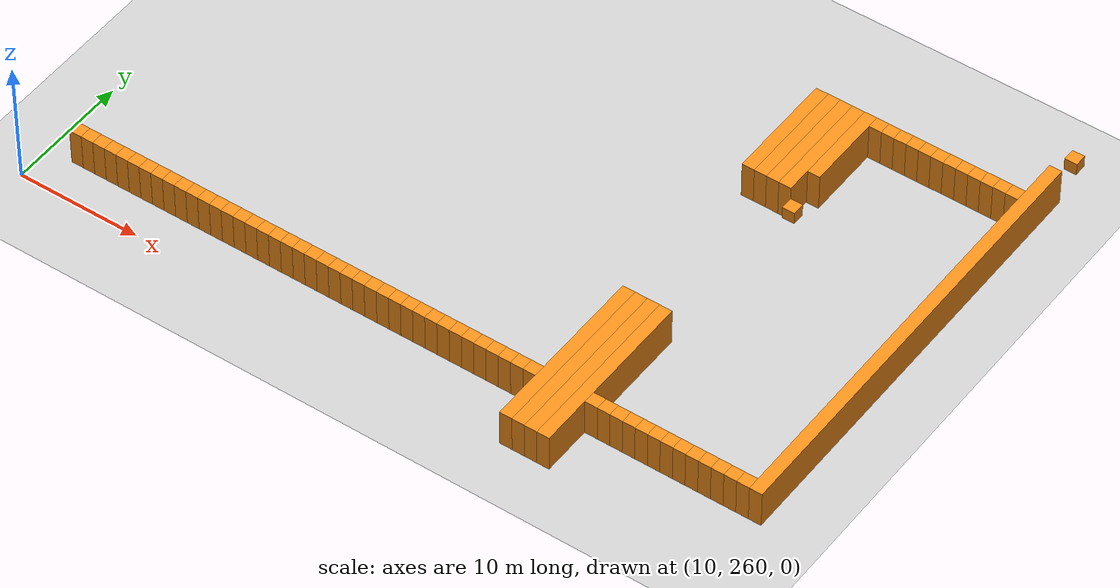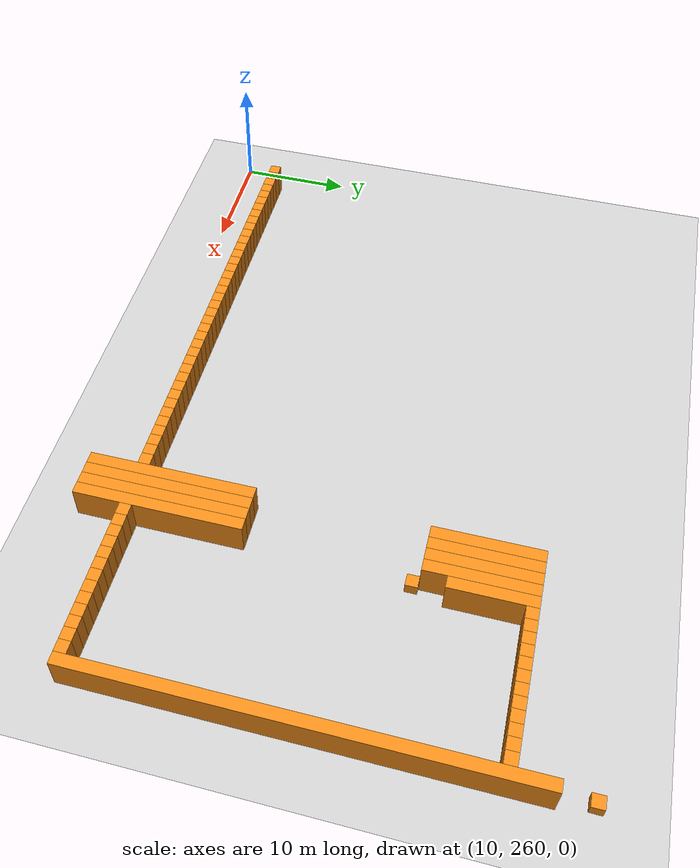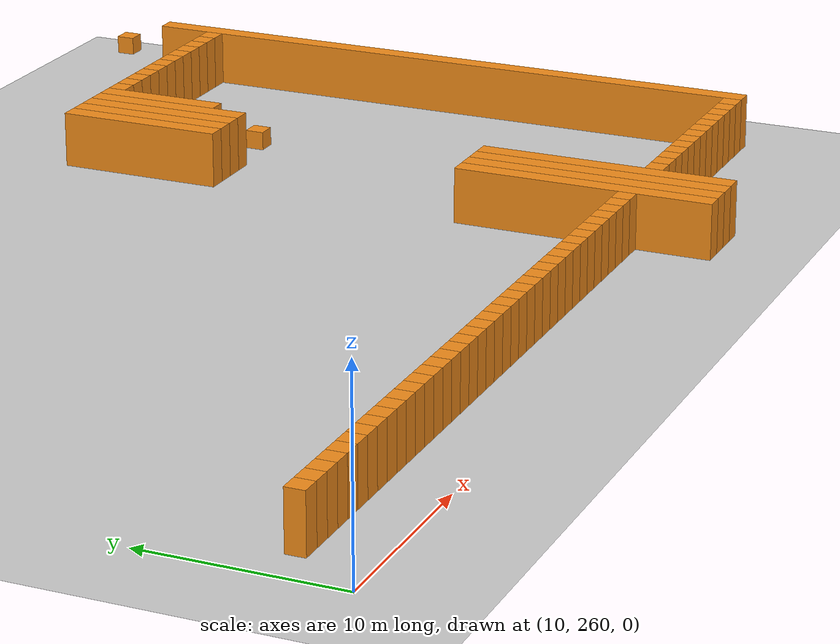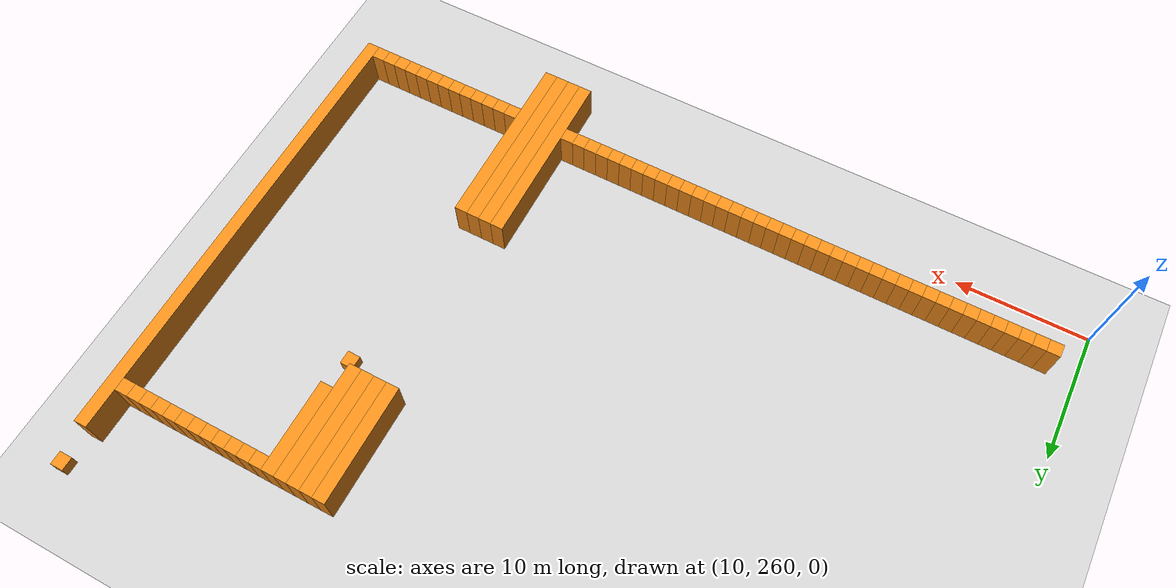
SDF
<sdf version="1.6">
 <world name="default">
  <include><uri>model://ground_plane</uri></include>
  <model name="unit_box_080">
   <pose>12.50   263.50     1.50 0 0 0</pose>
   <static>1</static>
   <link name="link">
    <inertial>
     <mass>5000</mass>
     <inertia><ixx>200</ixx><ixy>0</ixy><ixz>0</ixz><iyy>200</iyy><iyz>0</iyz><izz>200</izz></inertia>
    </inertial>
    <collision name="collision"><geometry><box><size>1 1 3</size></box></geometry></collision>
    <visual name="visual">
     <geometry><box><size>1 1 3</size></box></geometry>
     <material>
      <script><name>Gazebo/Orange</name><uri>file://media/materials/scripts/gazebo.material</uri></script>
     </material>
    </visual>
   </link>
  </model>
  <model name="unit_box_093">
   <pose>13.50   263.50     1.50 0 0 0</pose>
   <static>1</static>
   <link name="link">
    <inertial>
     <mass>5000</mass>
     <inertia><ixx>200</ixx><ixy>0</ixy><ixz>0</ixz><iyy>200</iyy><iyz>0</iyz><izz>200</izz></inertia>
    </inertial>
    <collision name="collision"><geometry><box><size>1 1 3</size></box></geometry></collision>
    <visual name="visual">
     <geometry><box><size>1 1 3</size></box></geometry>
     <material>
      <script><name>Gazebo/Orange</name><uri>file://media/materials/scripts/gazebo.material</uri></script>
     </material>
    </visual>
   </link>
  </model>
  <model name="unit_box_106">
   <pose>14.50   263.50     1.50 0 0 0</pose>
   <static>1</static>
   <link name="link">
    <inertial>
     <mass>5000</mass>
     <inertia><ixx>200</ixx><ixy>0</ixy><ixz>0</ixz><iyy>200</iyy><iyz>0</iyz><izz>200</izz></inertia>
    </inertial>
    <collision name="collision"><geometry><box><size>1 1 3</size></box></geometry></collision>
    <visual name="visual">
     <geometry><box><size>1 1 3</size></box></geometry>
     <material>
      <script><name>Gazebo/Orange</name><uri>file://media/materials/scripts/gazebo.material</uri></script>
     </material>
    </visual>
   </link>
  </model>
  <model name="unit_box_119">
   <pose>15.50   263.50     1.50 0 0 0</pose>
   <static>1</static>
   <link name="link">
    <inertial>
     <mass>5000</mass>
     <inertia><ixx>200</ixx><ixy>0</ixy><ixz>0</ixz><iyy>200</iyy><iyz>0</iyz><izz>200</izz></inertia>
    </inertial>
    <collision name="collision"><geometry><box><size>1 1 3</size></box></geometry></collision>
    <visual name="visual">
     <geometry><box><size>1 1 3</size></box></geometry>
     <material>
      <script><name>Gazebo/Orange</name><uri>file://media/materials/scripts/gazebo.material</uri></script>
     </material>
    </visual>
   </link>
  </model>
  <model name="unit_box_132">
   <pose>16.50   263.50     1.50 0 0 0</pose>
   <static>1</static>
   <link name="link">
    <inertial>
     <mass>5000</mass>
     <inertia><ixx>200</ixx><ixy>0</ixy><ixz>0</ixz><iyy>200</iyy><iyz>0</iyz><izz>200</izz></inertia>
    </inertial>
    <collision name="collision"><geometry><box><size>1 1 3</size></box></geometry></collision>
    <visual name="visual">
     <geometry><box><size>1 1 3</size></box></geometry>
     <material>
      <script><name>Gazebo/Orange</name><uri>file://media/materials/scripts/gazebo.material</uri></script>
     </material>
    </visual>
   </link>
  </model>
  <model name="unit_box_145">
   <pose>17.50   263.50     1.50 0 0 0</pose>
   <static>1</static>
   <link name="link">
    <inertial>
     <mass>5000</mass>
     <inertia><ixx>200</ixx><ixy>0</ixy><ixz>0</ixz><iyy>200</iyy><iyz>0</iyz><izz>200</izz></inertia>
    </inertial>
    <collision name="collision"><geometry><box><size>1 1 3</size></box></geometry></collision>
    <visual name="visual">
     <geometry><box><size>1 1 3</size></box></geometry>
     <material>
      <script><name>Gazebo/Orange</name><uri>file://media/materials/scripts/gazebo.material</uri></script>
     </material>
    </visual>
   </link>
  </model>
  <model name="unit_box_158">
   <pose>18.50   263.50     1.50 0 0 0</pose>
   <static>1</static>
   <link name="link">
    <inertial>
     <mass>5000</mass>
     <inertia><ixx>200</ixx><ixy>0</ixy><ixz>0</ixz><iyy>200</iyy><iyz>0</iyz><izz>200</izz></inertia>
    </inertial>
    <collision name="collision"><geometry><box><size>1 1 3</size></box></geometry></collision>
    <visual name="visual">
     <geometry><box><size>1 1 3</size></box></geometry>
     <material>
      <script><name>Gazebo/Orange</name><uri>file://media/materials/scripts/gazebo.material</uri></script>
     </material>
    </visual>
   </link>
  </model>
  <model name="unit_box_171">
   <pose>19.50   263.50     1.50 0 0 0</pose>
   <static>1</static>
   <link name="link">
    <inertial>
     <mass>5000</mass>
     <inertia><ixx>200</ixx><ixy>0</ixy><ixz>0</ixz><iyy>200</iyy><iyz>0</iyz><izz>200</izz></inertia>
    </inertial>
    <collision name="collision"><geometry><box><size>1 1 3</size></box></geometry></collision>
    <visual name="visual">
     <geometry><box><size>1 1 3</size></box></geometry>
     <material>
      <script><name>Gazebo/Orange</name><uri>file://media/materials/scripts/gazebo.material</uri></script>
     </material>
    </visual>
   </link>
  </model>
  <model name="unit_box_184">
   <pose>20.50   263.50     1.50 0 0 0</pose>
   <static>1</static>
   <link name="link">
    <inertial>
     <mass>5000</mass>
     <inertia><ixx>200</ixx><ixy>0</ixy><ixz>0</ixz><iyy>200</iyy><iyz>0</iyz><izz>200</izz></inertia>
    </inertial>
    <collision name="collision"><geometry><box><size>1 1 3</size></box></geometry></collision>
    <visual name="visual">
     <geometry><box><size>1 1 3</size></box></geometry>
     <material>
      <script><name>Gazebo/Orange</name><uri>file://media/materials/scripts/gazebo.material</uri></script>
     </material>
    </visual>
   </link>
  </model>
  <model name="unit_box_197">
   <pose>21.50   263.50     1.50 0 0 0</pose>
   <static>1</static>
   <link name="link">
    <inertial>
     <mass>5000</mass>
     <inertia><ixx>200</ixx><ixy>0</ixy><ixz>0</ixz><iyy>200</iyy><iyz>0</iyz><izz>200</izz></inertia>
    </inertial>
    <collision name="collision"><geometry><box><size>1 1 3</size></box></geometry></collision>
    <visual name="visual">
     <geometry><box><size>1 1 3</size></box></geometry>
     <material>
      <script><name>Gazebo/Orange</name><uri>file://media/materials/scripts/gazebo.material</uri></script>
     </material>
    </visual>
   </link>
  </model>
  <model name="unit_box_210">
   <pose>22.50   263.50     1.50 0 0 0</pose>
   <static>1</static>
   <link name="link">
    <inertial>
     <mass>5000</mass>
     <inertia><ixx>200</ixx><ixy>0</ixy><ixz>0</ixz><iyy>200</iyy><iyz>0</iyz><izz>200</izz></inertia>
    </inertial>
    <collision name="collision"><geometry><box><size>1 1 3</size></box></geometry></collision>
    <visual name="visual">
     <geometry><box><size>1 1 3</size></box></geometry>
     <material>
      <script><name>Gazebo/Orange</name><uri>file://media/materials/scripts/gazebo.material</uri></script>
     </material>
    </visual>
   </link>
  </model>
  <model name="unit_box_223">
   <pose>23.50   263.50     1.50 0 0 0</pose>
   <static>1</static>
   <link name="link">
    <inertial>
     <mass>5000</mass>
     <inertia><ixx>200</ixx><ixy>0</ixy><ixz>0</ixz><iyy>200</iyy><iyz>0</iyz><izz>200</izz></inertia>
    </inertial>
    <collision name="collision"><geometry><box><size>1 1 3</size></box></geometry></collision>
    <visual name="visual">
     <geometry><box><size>1 1 3</size></box></geometry>
     <material>
      <script><name>Gazebo/Orange</name><uri>file://media/materials/scripts/gazebo.material</uri></script>
     </material>
    </visual>
   </link>
  </model>
  <model name="unit_box_236">
   <pose>24.50   263.50     1.50 0 0 0</pose>
   <static>1</static>
   <link name="link">
    <inertial>
     <mass>5000</mass>
     <inertia><ixx>200</ixx><ixy>0</ixy><ixz>0</ixz><iyy>200</iyy><iyz>0</iyz><izz>200</izz></inertia>
    </inertial>
    <collision name="collision"><geometry><box><size>1 1 3</size></box></geometry></collision>
    <visual name="visual">
     <geometry><box><size>1 1 3</size></box></geometry>
     <material>
      <script><name>Gazebo/Orange</name><uri>file://media/materials/scripts/gazebo.material</uri></script>
     </material>
    </visual>
   </link>
  </model>
  <model name="unit_box_249">
   <pose>25.50   263.50     1.50 0 0 0</pose>
   <static>1</static>
   <link name="link">
    <inertial>
     <mass>5000</mass>
     <inertia><ixx>200</ixx><ixy>0</ixy><ixz>0</ixz><iyy>200</iyy><iyz>0</iyz><izz>200</izz></inertia>
    </inertial>
    <collision name="collision"><geometry><box><size>1 1 3</size></box></geometry></collision>
    <visual name="visual">
     <geometry><box><size>1 1 3</size></box></geometry>
     <material>
      <script><name>Gazebo/Orange</name><uri>file://media/materials/scripts/gazebo.material</uri></script>
     </material>
    </visual>
   </link>
  </model>
  <model name="unit_box_262">
   <pose>26.50   263.50     1.50 0 0 0</pose>
   <static>1</static>
   <link name="link">
    <inertial>
     <mass>5000</mass>
     <inertia><ixx>200</ixx><ixy>0</ixy><ixz>0</ixz><iyy>200</iyy><iyz>0</iyz><izz>200</izz></inertia>
    </inertial>
    <collision name="collision"><geometry><box><size>1 1 3</size></box></geometry></collision>
    <visual name="visual">
     <geometry><box><size>1 1 3</size></box></geometry>
     <material>
      <script><name>Gazebo/Orange</name><uri>file://media/materials/scripts/gazebo.material</uri></script>
     </material>
    </visual>
   </link>
  </model>
  <model name="unit_box_275">
   <pose>27.50   263.50     1.50 0 0 0</pose>
   <static>1</static>
   <link name="link">
    <inertial>
     <mass>5000</mass>
     <inertia><ixx>200</ixx><ixy>0</ixy><ixz>0</ixz><iyy>200</iyy><iyz>0</iyz><izz>200</izz></inertia>
    </inertial>
    <collision name="collision"><geometry><box><size>1 1 3</size></box></geometry></collision>
    <visual name="visual">
     <geometry><box><size>1 1 3</size></box></geometry>
     <material>
      <script><name>Gazebo/Orange</name><uri>file://media/materials/scripts/gazebo.material</uri></script>
     </material>
    </visual>
   </link>
  </model>
  <model name="unit_box_288">
   <pose>28.50   263.50     1.50 0 0 0</pose>
   <static>1</static>
   <link name="link">
    <inertial>
     <mass>5000</mass>
     <inertia><ixx>200</ixx><ixy>0</ixy><ixz>0</ixz><iyy>200</iyy><iyz>0</iyz><izz>200</izz></inertia>
    </inertial>
    <collision name="collision"><geometry><box><size>1 1 3</size></box></geometry></collision>
    <visual name="visual">
     <geometry><box><size>1 1 3</size></box></geometry>
     <material>
      <script><name>Gazebo/Orange</name><uri>file://media/materials/scripts/gazebo.material</uri></script>
     </material>
    </visual>
   </link>
  </model>
  <model name="unit_box_301">
   <pose>29.50   263.50     1.50 0 0 0</pose>
   <static>1</static>
   <link name="link">
    <inertial>
     <mass>5000</mass>
     <inertia><ixx>200</ixx><ixy>0</ixy><ixz>0</ixz><iyy>200</iyy><iyz>0</iyz><izz>200</izz></inertia>
    </inertial>
    <collision name="collision"><geometry><box><size>1 1 3</size></box></geometry></collision>
    <visual name="visual">
     <geometry><box><size>1 1 3</size></box></geometry>
     <material>
      <script><name>Gazebo/Orange</name><uri>file://media/materials/scripts/gazebo.material</uri></script>
     </material>
    </visual>
   </link>
  </model>
  <model name="unit_box_314">
   <pose>30.50   263.50     1.50 0 0 0</pose>
   <static>1</static>
   <link name="link">
    <inertial>
     <mass>5000</mass>
     <inertia><ixx>200</ixx><ixy>0</ixy><ixz>0</ixz><iyy>200</iyy><iyz>0</iyz><izz>200</izz></inertia>
    </inertial>
    <collision name="collision"><geometry><box><size>1 1 3</size></box></geometry></collision>
    <visual name="visual">
     <geometry><box><size>1 1 3</size></box></geometry>
     <material>
      <script><name>Gazebo/Orange</name><uri>file://media/materials/scripts/gazebo.material</uri></script>
     </material>
    </visual>
   </link>
  </model>
  <model name="unit_box_327">
   <pose>31.50   263.50     1.50 0 0 0</pose>
   <static>1</static>
   <link name="link">
    <inertial>
     <mass>5000</mass>
     <inertia><ixx>200</ixx><ixy>0</ixy><ixz>0</ixz><iyy>200</iyy><iyz>0</iyz><izz>200</izz></inertia>
    </inertial>
    <collision name="collision"><geometry><box><size>1 1 3</size></box></geometry></collision>
    <visual name="visual">
     <geometry><box><size>1 1 3</size></box></geometry>
     <material>
      <script><name>Gazebo/Orange</name><uri>file://media/materials/scripts/gazebo.material</uri></script>
     </material>
    </visual>
   </link>
  </model>
  <model name="unit_box_340">
   <pose>32.50   263.50     1.50 0 0 0</pose>
   <static>1</static>
   <link name="link">
    <inertial>
     <mass>5000</mass>
     <inertia><ixx>200</ixx><ixy>0</ixy><ixz>0</ixz><iyy>200</iyy><iyz>0</iyz><izz>200</izz></inertia>
    </inertial>
    <collision name="collision"><geometry><box><size>1 1 3</size></box></geometry></collision>
    <visual name="visual">
     <geometry><box><size>1 1 3</size></box></geometry>
     <material>
      <script><name>Gazebo/Orange</name><uri>file://media/materials/scripts/gazebo.material</uri></script>
     </material>
    </visual>
   </link>
  </model>
  <model name="unit_box_353">
   <pose>33.50   263.50     1.50 0 0 0</pose>
   <static>1</static>
   <link name="link">
    <inertial>
     <mass>5000</mass>
     <inertia><ixx>200</ixx><ixy>0</ixy><ixz>0</ixz><iyy>200</iyy><iyz>0</iyz><izz>200</izz></inertia>
    </inertial>
    <collision name="collision"><geometry><box><size>1 1 3</size></box></geometry></collision>
    <visual name="visual">
     <geometry><box><size>1 1 3</size></box></geometry>
     <material>
      <script><name>Gazebo/Orange</name><uri>file://media/materials/scripts/gazebo.material</uri></script>
     </material>
    </visual>
   </link>
  </model>
  <model name="unit_box_366">
   <pose>34.50   263.50     1.50 0 0 0</pose>
   <static>1</static>
   <link name="link">
    <inertial>
     <mass>5000</mass>
     <inertia><ixx>200</ixx><ixy>0</ixy><ixz>0</ixz><iyy>200</iyy><iyz>0</iyz><izz>200</izz></inertia>
    </inertial>
    <collision name="collision"><geometry><box><size>1 1 3</size></box></geometry></collision>
    <visual name="visual">
     <geometry><box><size>1 1 3</size></box></geometry>
     <material>
      <script><name>Gazebo/Orange</name><uri>file://media/materials/scripts/gazebo.material</uri></script>
     </material>
    </visual>
   </link>
  </model>
  <model name="unit_box_379">
   <pose>35.50   263.50     1.50 0 0 0</pose>
   <static>1</static>
   <link name="link">
    <inertial>
     <mass>5000</mass>
     <inertia><ixx>200</ixx><ixy>0</ixy><ixz>0</ixz><iyy>200</iyy><iyz>0</iyz><izz>200</izz></inertia>
    </inertial>
    <collision name="collision"><geometry><box><size>1 1 3</size></box></geometry></collision>
    <visual name="visual">
     <geometry><box><size>1 1 3</size></box></geometry>
     <material>
      <script><name>Gazebo/Orange</name><uri>file://media/materials/scripts/gazebo.material</uri></script>
     </material>
    </visual>
   </link>
  </model>
  <model name="unit_box_392">
   <pose>36.50   263.50     1.50 0 0 0</pose>
   <static>1</static>
   <link name="link">
    <inertial>
     <mass>5000</mass>
     <inertia><ixx>200</ixx><ixy>0</ixy><ixz>0</ixz><iyy>200</iyy><iyz>0</iyz><izz>200</izz></inertia>
    </inertial>
    <collision name="collision"><geometry><box><size>1 1 3</size></box></geometry></collision>
    <visual name="visual">
     <geometry><box><size>1 1 3</size></box></geometry>
     <material>
      <script><name>Gazebo/Orange</name><uri>file://media/materials/scripts/gazebo.material</uri></script>
     </material>
    </visual>
   </link>
  </model>
  <model name="unit_box_405">
   <pose>37.50   263.50     1.50 0 0 0</pose>
   <static>1</static>
   <link name="link">
    <inertial>
     <mass>5000</mass>
     <inertia><ixx>200</ixx><ixy>0</ixy><ixz>0</ixz><iyy>200</iyy><iyz>0</iyz><izz>200</izz></inertia>
    </inertial>
    <collision name="collision"><geometry><box><size>1 1 3</size></box></geometry></collision>
    <visual name="visual">
     <geometry><box><size>1 1 3</size></box></geometry>
     <material>
      <script><name>Gazebo/Orange</name><uri>file://media/materials/scripts/gazebo.material</uri></script>
     </material>
    </visual>
   </link>
  </model>
  <model name="unit_box_418">
   <pose>38.50   263.50     1.50 0 0 0</pose>
   <static>1</static>
   <link name="link">
    <inertial>
     <mass>5000</mass>
     <inertia><ixx>200</ixx><ixy>0</ixy><ixz>0</ixz><iyy>200</iyy><iyz>0</iyz><izz>200</izz></inertia>
    </inertial>
    <collision name="collision"><geometry><box><size>1 1 3</size></box></geometry></collision>
    <visual name="visual">
     <geometry><box><size>1 1 3</size></box></geometry>
     <material>
      <script><name>Gazebo/Orange</name><uri>file://media/materials/scripts/gazebo.material</uri></script>
     </material>
    </visual>
   </link>
  </model>
  <model name="unit_box_431">
   <pose>39.50   263.50     1.50 0 0 0</pose>
   <static>1</static>
   <link name="link">
    <inertial>
     <mass>5000</mass>
     <inertia><ixx>200</ixx><ixy>0</ixy><ixz>0</ixz><iyy>200</iyy><iyz>0</iyz><izz>200</izz></inertia>
    </inertial>
    <collision name="collision"><geometry><box><size>1 1 3</size></box></geometry></collision>
    <visual name="visual">
     <geometry><box><size>1 1 3</size></box></geometry>
     <material>
      <script><name>Gazebo/Orange</name><uri>file://media/materials/scripts/gazebo.material</uri></script>
     </material>
    </visual>
   </link>
  </model>
  <model name="unit_box_444">
   <pose>40.50   263.50     1.50 0 0 0</pose>
   <static>1</static>
   <link name="link">
    <inertial>
     <mass>5000</mass>
     <inertia><ixx>200</ixx><ixy>0</ixy><ixz>0</ixz><iyy>200</iyy><iyz>0</iyz><izz>200</izz></inertia>
    </inertial>
    <collision name="collision"><geometry><box><size>1 1 3</size></box></geometry></collision>
    <visual name="visual">
     <geometry><box><size>1 1 3</size></box></geometry>
     <material>
      <script><name>Gazebo/Orange</name><uri>file://media/materials/scripts/gazebo.material</uri></script>
     </material>
    </visual>
   </link>
  </model>
  <model name="unit_box_457">
   <pose>41.50   263.50     1.50 0 0 0</pose>
   <static>1</static>
   <link name="link">
    <inertial>
     <mass>5000</mass>
     <inertia><ixx>200</ixx><ixy>0</ixy><ixz>0</ixz><iyy>200</iyy><iyz>0</iyz><izz>200</izz></inertia>
    </inertial>
    <collision name="collision"><geometry><box><size>1 1 3</size></box></geometry></collision>
    <visual name="visual">
     <geometry><box><size>1 1 3</size></box></geometry>
     <material>
      <script><name>Gazebo/Orange</name><uri>file://media/materials/scripts/gazebo.material</uri></script>
     </material>
    </visual>
   </link>
  </model>
  <model name="unit_box_470">
   <pose>42.50   263.50     1.50 0 0 0</pose>
   <static>1</static>
   <link name="link">
    <inertial>
     <mass>5000</mass>
     <inertia><ixx>200</ixx><ixy>0</ixy><ixz>0</ixz><iyy>200</iyy><iyz>0</iyz><izz>200</izz></inertia>
    </inertial>
    <collision name="collision"><geometry><box><size>1 1 3</size></box></geometry></collision>
    <visual name="visual">
     <geometry><box><size>1 1 3</size></box></geometry>
     <material>
      <script><name>Gazebo/Orange</name><uri>file://media/materials/scripts/gazebo.material</uri></script>
     </material>
    </visual>
   </link>
  </model>
  <model name="unit_box_483">
   <pose>43.50   263.50     1.50 0 0 0</pose>
   <static>1</static>
   <link name="link">
    <inertial>
     <mass>5000</mass>
     <inertia><ixx>200</ixx><ixy>0</ixy><ixz>0</ixz><iyy>200</iyy><iyz>0</iyz><izz>200</izz></inertia>
    </inertial>
    <collision name="collision"><geometry><box><size>1 1 3</size></box></geometry></collision>
    <visual name="visual">
     <geometry><box><size>1 1 3</size></box></geometry>
     <material>
      <script><name>Gazebo/Orange</name><uri>file://media/materials/scripts/gazebo.material</uri></script>
     </material>
    </visual>
   </link>
  </model>
  <model name="unit_box_496">
   <pose>44.50   263.50     1.50 0 0 0</pose>
   <static>1</static>
   <link name="link">
    <inertial>
     <mass>5000</mass>
     <inertia><ixx>200</ixx><ixy>0</ixy><ixz>0</ixz><iyy>200</iyy><iyz>0</iyz><izz>200</izz></inertia>
    </inertial>
    <collision name="collision"><geometry><box><size>1 1 3</size></box></geometry></collision>
    <visual name="visual">
     <geometry><box><size>1 1 3</size></box></geometry>
     <material>
      <script><name>Gazebo/Orange</name><uri>file://media/materials/scripts/gazebo.material</uri></script>
     </material>
    </visual>
   </link>
  </model>
  <model name="unit_box_509">
   <pose>45.50   263.50     1.50 0 0 0</pose>
   <static>1</static>
   <link name="link">
    <inertial>
     <mass>5000</mass>
     <inertia><ixx>200</ixx><ixy>0</ixy><ixz>0</ixz><iyy>200</iyy><iyz>0</iyz><izz>200</izz></inertia>
    </inertial>
    <collision name="collision"><geometry><box><size>1 1 3</size></box></geometry></collision>
    <visual name="visual">
     <geometry><box><size>1 1 3</size></box></geometry>
     <material>
      <script><name>Gazebo/Orange</name><uri>file://media/materials/scripts/gazebo.material</uri></script>
     </material>
    </visual>
   </link>
  </model>
  <model name="unit_box_522">
   <pose>46.50   263.50     1.50 0 0 0</pose>
   <static>1</static>
   <link name="link">
    <inertial>
     <mass>5000</mass>
     <inertia><ixx>200</ixx><ixy>0</ixy><ixz>0</ixz><iyy>200</iyy><iyz>0</iyz><izz>200</izz></inertia>
    </inertial>
    <collision name="collision"><geometry><box><size>1 1 3</size></box></geometry></collision>
    <visual name="visual">
     <geometry><box><size>1 1 3</size></box></geometry>
     <material>
      <script><name>Gazebo/Orange</name><uri>file://media/materials/scripts/gazebo.material</uri></script>
     </material>
    </visual>
   </link>
  </model>
  <model name="unit_box_535">
   <pose>47.50   263.50     1.50 0 0 0</pose>
   <static>1</static>
   <link name="link">
    <inertial>
     <mass>5000</mass>
     <inertia><ixx>200</ixx><ixy>0</ixy><ixz>0</ixz><iyy>200</iyy><iyz>0</iyz><izz>200</izz></inertia>
    </inertial>
    <collision name="collision"><geometry><box><size>1 1 3</size></box></geometry></collision>
    <visual name="visual">
     <geometry><box><size>1 1 3</size></box></geometry>
     <material>
      <script><name>Gazebo/Orange</name><uri>file://media/materials/scripts/gazebo.material</uri></script>
     </material>
    </visual>
   </link>
  </model>
  <model name="unit_box_548">
   <pose>48.50   263.50     1.50 0 0 0</pose>
   <static>1</static>
   <link name="link">
    <inertial>
     <mass>5000</mass>
     <inertia><ixx>200</ixx><ixy>0</ixy><ixz>0</ixz><iyy>200</iyy><iyz>0</iyz><izz>200</izz></inertia>
    </inertial>
    <collision name="collision"><geometry><box><size>1 1 3</size></box></geometry></collision>
    <visual name="visual">
     <geometry><box><size>1 1 3</size></box></geometry>
     <material>
      <script><name>Gazebo/Orange</name><uri>file://media/materials/scripts/gazebo.material</uri></script>
     </material>
    </visual>
   </link>
  </model>
  <model name="unit_box_561">
   <pose>49.50   263.50     1.50 0 0 0</pose>
   <static>1</static>
   <link name="link">
    <inertial>
     <mass>5000</mass>
     <inertia><ixx>200</ixx><ixy>0</ixy><ixz>0</ixz><iyy>200</iyy><iyz>0</iyz><izz>200</izz></inertia>
    </inertial>
    <collision name="collision"><geometry><box><size>1 1 3</size></box></geometry></collision>
    <visual name="visual">
     <geometry><box><size>1 1 3</size></box></geometry>
     <material>
      <script><name>Gazebo/Orange</name><uri>file://media/materials/scripts/gazebo.material</uri></script>
     </material>
    </visual>
   </link>
  </model>
  <model name="unit_box_577">
   <pose>50.50   263.50     1.50 0 0 0</pose>
   <static>1</static>
   <link name="link">
    <inertial>
     <mass>5000</mass>
     <inertia><ixx>200</ixx><ixy>0</ixy><ixz>0</ixz><iyy>200</iyy><iyz>0</iyz><izz>200</izz></inertia>
    </inertial>
    <collision name="collision"><geometry><box><size>1 1 3</size></box></geometry></collision>
    <visual name="visual">
     <geometry><box><size>1 1 3</size></box></geometry>
     <material>
      <script><name>Gazebo/Orange</name><uri>file://media/materials/scripts/gazebo.material</uri></script>
     </material>
    </visual>
   </link>
  </model>
  <model name="unit_box_590">
   <pose>51.50   266.00     1.50 0 0 0</pose>
   <static>1</static>
   <link name="link">
    <inertial>
     <mass>5000</mass>
     <inertia><ixx>200</ixx><ixy>0</ixy><ixz>0</ixz><iyy>200</iyy><iyz>0</iyz><izz>200</izz></inertia>
    </inertial>
    <collision name="collision"><geometry><box><size>1 14 3</size></box></geometry></collision>
    <visual name="visual">
     <geometry><box><size>1 14 3</size></box></geometry>
     <material>
      <script><name>Gazebo/Orange</name><uri>file://media/materials/scripts/gazebo.material</uri></script>
     </material>
    </visual>
   </link>
  </model>
  <model name="unit_box_591">
   <pose>51.50   291.50     1.50 0 0 0</pose>
   <static>1</static>
   <link name="link">
    <inertial>
     <mass>5000</mass>
     <inertia><ixx>200</ixx><ixy>0</ixy><ixz>0</ixz><iyy>200</iyy><iyz>0</iyz><izz>200</izz></inertia>
    </inertial>
    <collision name="collision"><geometry><box><size>1 9 3</size></box></geometry></collision>
    <visual name="visual">
     <geometry><box><size>1 9 3</size></box></geometry>
     <material>
      <script><name>Gazebo/Orange</name><uri>file://media/materials/scripts/gazebo.material</uri></script>
     </material>
    </visual>
   </link>
  </model>
  <model name="unit_box_604">
   <pose>52.50   266.00     1.50 0 0 0</pose>
   <static>1</static>
   <link name="link">
    <inertial>
     <mass>5000</mass>
     <inertia><ixx>200</ixx><ixy>0</ixy><ixz>0</ixz><iyy>200</iyy><iyz>0</iyz><izz>200</izz></inertia>
    </inertial>
    <collision name="collision"><geometry><box><size>1 14 3</size></box></geometry></collision>
    <visual name="visual">
     <geometry><box><size>1 14 3</size></box></geometry>
     <material>
      <script><name>Gazebo/Orange</name><uri>file://media/materials/scripts/gazebo.material</uri></script>
     </material>
    </visual>
   </link>
  </model>
  <model name="unit_box_605">
   <pose>52.50   291.50     1.50 0 0 0</pose>
   <static>1</static>
   <link name="link">
    <inertial>
     <mass>5000</mass>
     <inertia><ixx>200</ixx><ixy>0</ixy><ixz>0</ixz><iyy>200</iyy><iyz>0</iyz><izz>200</izz></inertia>
    </inertial>
    <collision name="collision"><geometry><box><size>1 9 3</size></box></geometry></collision>
    <visual name="visual">
     <geometry><box><size>1 9 3</size></box></geometry>
     <material>
      <script><name>Gazebo/Orange</name><uri>file://media/materials/scripts/gazebo.material</uri></script>
     </material>
    </visual>
   </link>
  </model>
  <model name="unit_box_618">
   <pose>53.50   266.00     1.50 0 0 0</pose>
   <static>1</static>
   <link name="link">
    <inertial>
     <mass>5000</mass>
     <inertia><ixx>200</ixx><ixy>0</ixy><ixz>0</ixz><iyy>200</iyy><iyz>0</iyz><izz>200</izz></inertia>
    </inertial>
    <collision name="collision"><geometry><box><size>1 14 3</size></box></geometry></collision>
    <visual name="visual">
     <geometry><box><size>1 14 3</size></box></geometry>
     <material>
      <script><name>Gazebo/Orange</name><uri>file://media/materials/scripts/gazebo.material</uri></script>
     </material>
    </visual>
   </link>
  </model>
  <model name="unit_box_619">
   <pose>53.50   291.50     1.50 0 0 0</pose>
   <static>1</static>
   <link name="link">
    <inertial>
     <mass>5000</mass>
     <inertia><ixx>200</ixx><ixy>0</ixy><ixz>0</ixz><iyy>200</iyy><iyz>0</iyz><izz>200</izz></inertia>
    </inertial>
    <collision name="collision"><geometry><box><size>1 9 3</size></box></geometry></collision>
    <visual name="visual">
     <geometry><box><size>1 9 3</size></box></geometry>
     <material>
      <script><name>Gazebo/Orange</name><uri>file://media/materials/scripts/gazebo.material</uri></script>
     </material>
    </visual>
   </link>
  </model>
  <model name="unit_box_642">
   <pose>54.50   266.00     1.50 0 0 0</pose>
   <static>1</static>
   <link name="link">
    <inertial>
     <mass>5000</mass>
     <inertia><ixx>200</ixx><ixy>0</ixy><ixz>0</ixz><iyy>200</iyy><iyz>0</iyz><izz>200</izz></inertia>
    </inertial>
    <collision name="collision"><geometry><box><size>1 14 3</size></box></geometry></collision>
    <visual name="visual">
     <geometry><box><size>1 14 3</size></box></geometry>
     <material>
      <script><name>Gazebo/Orange</name><uri>file://media/materials/scripts/gazebo.material</uri></script>
     </material>
    </visual>
   </link>
  </model>
  <model name="unit_box_643">
   <pose>54.50   291.50     1.50 0 0 0</pose>
   <static>1</static>
   <link name="link">
    <inertial>
     <mass>5000</mass>
     <inertia><ixx>200</ixx><ixy>0</ixy><ixz>0</ixz><iyy>200</iyy><iyz>0</iyz><izz>200</izz></inertia>
    </inertial>
    <collision name="collision"><geometry><box><size>1 9 3</size></box></geometry></collision>
    <visual name="visual">
     <geometry><box><size>1 9 3</size></box></geometry>
     <material>
      <script><name>Gazebo/Orange</name><uri>file://media/materials/scripts/gazebo.material</uri></script>
     </material>
    </visual>
   </link>
  </model>
  <model name="unit_box_656">
   <pose>55.50   263.50     1.50 0 0 0</pose>
   <static>1</static>
   <link name="link">
    <inertial>
     <mass>5000</mass>
     <inertia><ixx>200</ixx><ixy>0</ixy><ixz>0</ixz><iyy>200</iyy><iyz>0</iyz><izz>200</izz></inertia>
    </inertial>
    <collision name="collision"><geometry><box><size>1 1 3</size></box></geometry></collision>
    <visual name="visual">
     <geometry><box><size>1 1 3</size></box></geometry>
     <material>
      <script><name>Gazebo/Orange</name><uri>file://media/materials/scripts/gazebo.material</uri></script>
     </material>
    </visual>
   </link>
  </model>
  <model name="unit_box_657">
   <pose>55.50   286.50     1.50 0 0 0</pose>
   <static>1</static>
   <link name="link">
    <inertial>
     <mass>5000</mass>
     <inertia><ixx>200</ixx><ixy>0</ixy><ixz>0</ixz><iyy>200</iyy><iyz>0</iyz><izz>200</izz></inertia>
    </inertial>
    <collision name="collision"><geometry><box><size>1 1 1</size></box></geometry></collision>
    <visual name="visual">
     <geometry><box><size>1 1 1</size></box></geometry>
     <material>
      <script><name>Gazebo/Orange</name><uri>file://media/materials/scripts/gazebo.material</uri></script>
     </material>
    </visual>
   </link>
  </model>
  <model name="unit_box_658">
   <pose>55.50   292.50     1.50 0 0 0</pose>
   <static>1</static>
   <link name="link">
    <inertial>
     <mass>5000</mass>
     <inertia><ixx>200</ixx><ixy>0</ixy><ixz>0</ixz><iyy>200</iyy><iyz>0</iyz><izz>200</izz></inertia>
    </inertial>
    <collision name="collision"><geometry><box><size>1 7 3</size></box></geometry></collision>
    <visual name="visual">
     <geometry><box><size>1 7 3</size></box></geometry>
     <material>
      <script><name>Gazebo/Orange</name><uri>file://media/materials/scripts/gazebo.material</uri></script>
     </material>
    </visual>
   </link>
  </model>
  <model name="unit_box_664">
   <pose>56.50   263.50     1.50 0 0 0</pose>
   <static>1</static>
   <link name="link">
    <inertial>
     <mass>5000</mass>
     <inertia><ixx>200</ixx><ixy>0</ixy><ixz>0</ixz><iyy>200</iyy><iyz>0</iyz><izz>200</izz></inertia>
    </inertial>
    <collision name="collision"><geometry><box><size>1 1 3</size></box></geometry></collision>
    <visual name="visual">
     <geometry><box><size>1 1 3</size></box></geometry>
     <material>
      <script><name>Gazebo/Orange</name><uri>file://media/materials/scripts/gazebo.material</uri></script>
     </material>
    </visual>
   </link>
  </model>
  <model name="unit_box_665">
   <pose>56.50   295.50     1.50 0 0 0</pose>
   <static>1</static>
   <link name="link">
    <inertial>
     <mass>5000</mass>
     <inertia><ixx>200</ixx><ixy>0</ixy><ixz>0</ixz><iyy>200</iyy><iyz>0</iyz><izz>200</izz></inertia>
    </inertial>
    <collision name="collision"><geometry><box><size>1 1 3</size></box></geometry></collision>
    <visual name="visual">
     <geometry><box><size>1 1 3</size></box></geometry>
     <material>
      <script><name>Gazebo/Orange</name><uri>file://media/materials/scripts/gazebo.material</uri></script>
     </material>
    </visual>
   </link>
  </model>
  <model name="unit_box_671">
   <pose>57.50   263.50     1.50 0 0 0</pose>
   <static>1</static>
   <link name="link">
    <inertial>
     <mass>5000</mass>
     <inertia><ixx>200</ixx><ixy>0</ixy><ixz>0</ixz><iyy>200</iyy><iyz>0</iyz><izz>200</izz></inertia>
    </inertial>
    <collision name="collision"><geometry><box><size>1 1 3</size></box></geometry></collision>
    <visual name="visual">
     <geometry><box><size>1 1 3</size></box></geometry>
     <material>
      <script><name>Gazebo/Orange</name><uri>file://media/materials/scripts/gazebo.material</uri></script>
     </material>
    </visual>
   </link>
  </model>
  <model name="unit_box_672">
   <pose>57.50   295.50     1.50 0 0 0</pose>
   <static>1</static>
   <link name="link">
    <inertial>
     <mass>5000</mass>
     <inertia><ixx>200</ixx><ixy>0</ixy><ixz>0</ixz><iyy>200</iyy><iyz>0</iyz><izz>200</izz></inertia>
    </inertial>
    <collision name="collision"><geometry><box><size>1 1 3</size></box></geometry></collision>
    <visual name="visual">
     <geometry><box><size>1 1 3</size></box></geometry>
     <material>
      <script><name>Gazebo/Orange</name><uri>file://media/materials/scripts/gazebo.material</uri></script>
     </material>
    </visual>
   </link>
  </model>
  <model name="unit_box_679">
   <pose>58.50   263.50     1.50 0 0 0</pose>
   <static>1</static>
   <link name="link">
    <inertial>
     <mass>5000</mass>
     <inertia><ixx>200</ixx><ixy>0</ixy><ixz>0</ixz><iyy>200</iyy><iyz>0</iyz><izz>200</izz></inertia>
    </inertial>
    <collision name="collision"><geometry><box><size>1 1 3</size></box></geometry></collision>
    <visual name="visual">
     <geometry><box><size>1 1 3</size></box></geometry>
     <material>
      <script><name>Gazebo/Orange</name><uri>file://media/materials/scripts/gazebo.material</uri></script>
     </material>
    </visual>
   </link>
  </model>
  <model name="unit_box_680">
   <pose>58.50   295.50     1.50 0 0 0</pose>
   <static>1</static>
   <link name="link">
    <inertial>
     <mass>5000</mass>
     <inertia><ixx>200</ixx><ixy>0</ixy><ixz>0</ixz><iyy>200</iyy><iyz>0</iyz><izz>200</izz></inertia>
    </inertial>
    <collision name="collision"><geometry><box><size>1 1 3</size></box></geometry></collision>
    <visual name="visual">
     <geometry><box><size>1 1 3</size></box></geometry>
     <material>
      <script><name>Gazebo/Orange</name><uri>file://media/materials/scripts/gazebo.material</uri></script>
     </material>
    </visual>
   </link>
  </model>
  <model name="unit_box_687">
   <pose>59.50   263.50     1.50 0 0 0</pose>
   <static>1</static>
   <link name="link">
    <inertial>
     <mass>5000</mass>
     <inertia><ixx>200</ixx><ixy>0</ixy><ixz>0</ixz><iyy>200</iyy><iyz>0</iyz><izz>200</izz></inertia>
    </inertial>
    <collision name="collision"><geometry><box><size>1 1 3</size></box></geometry></collision>
    <visual name="visual">
     <geometry><box><size>1 1 3</size></box></geometry>
     <material>
      <script><name>Gazebo/Orange</name><uri>file://media/materials/scripts/gazebo.material</uri></script>
     </material>
    </visual>
   </link>
  </model>
  <model name="unit_box_688">
   <pose>59.50   295.50     1.50 0 0 0</pose>
   <static>1</static>
   <link name="link">
    <inertial>
     <mass>5000</mass>
     <inertia><ixx>200</ixx><ixy>0</ixy><ixz>0</ixz><iyy>200</iyy><iyz>0</iyz><izz>200</izz></inertia>
    </inertial>
    <collision name="collision"><geometry><box><size>1 1 3</size></box></geometry></collision>
    <visual name="visual">
     <geometry><box><size>1 1 3</size></box></geometry>
     <material>
      <script><name>Gazebo/Orange</name><uri>file://media/materials/scripts/gazebo.material</uri></script>
     </material>
    </visual>
   </link>
  </model>
  <model name="unit_box_692">
   <pose>60.50   263.50     1.50 0 0 0</pose>
   <static>1</static>
   <link name="link">
    <inertial>
     <mass>5000</mass>
     <inertia><ixx>200</ixx><ixy>0</ixy><ixz>0</ixz><iyy>200</iyy><iyz>0</iyz><izz>200</izz></inertia>
    </inertial>
    <collision name="collision"><geometry><box><size>1 1 3</size></box></geometry></collision>
    <visual name="visual">
     <geometry><box><size>1 1 3</size></box></geometry>
     <material>
      <script><name>Gazebo/Orange</name><uri>file://media/materials/scripts/gazebo.material</uri></script>
     </material>
    </visual>
   </link>
  </model>
  <model name="unit_box_693">
   <pose>60.50   295.50     1.50 0 0 0</pose>
   <static>1</static>
   <link name="link">
    <inertial>
     <mass>5000</mass>
     <inertia><ixx>200</ixx><ixy>0</ixy><ixz>0</ixz><iyy>200</iyy><iyz>0</iyz><izz>200</izz></inertia>
    </inertial>
    <collision name="collision"><geometry><box><size>1 1 3</size></box></geometry></collision>
    <visual name="visual">
     <geometry><box><size>1 1 3</size></box></geometry>
     <material>
      <script><name>Gazebo/Orange</name><uri>file://media/materials/scripts/gazebo.material</uri></script>
     </material>
    </visual>
   </link>
  </model>
  <model name="unit_box_697">
   <pose>61.50   263.50     1.50 0 0 0</pose>
   <static>1</static>
   <link name="link">
    <inertial>
     <mass>5000</mass>
     <inertia><ixx>200</ixx><ixy>0</ixy><ixz>0</ixz><iyy>200</iyy><iyz>0</iyz><izz>200</izz></inertia>
    </inertial>
    <collision name="collision"><geometry><box><size>1 1 3</size></box></geometry></collision>
    <visual name="visual">
     <geometry><box><size>1 1 3</size></box></geometry>
     <material>
      <script><name>Gazebo/Orange</name><uri>file://media/materials/scripts/gazebo.material</uri></script>
     </material>
    </visual>
   </link>
  </model>
  <model name="unit_box_698">
   <pose>61.50   295.50     1.50 0 0 0</pose>
   <static>1</static>
   <link name="link">
    <inertial>
     <mass>5000</mass>
     <inertia><ixx>200</ixx><ixy>0</ixy><ixz>0</ixz><iyy>200</iyy><iyz>0</iyz><izz>200</izz></inertia>
    </inertial>
    <collision name="collision"><geometry><box><size>1 1 3</size></box></geometry></collision>
    <visual name="visual">
     <geometry><box><size>1 1 3</size></box></geometry>
     <material>
      <script><name>Gazebo/Orange</name><uri>file://media/materials/scripts/gazebo.material</uri></script>
     </material>
    </visual>
   </link>
  </model>
  <model name="unit_box_702">
   <pose>62.50   263.50     1.50 0 0 0</pose>
   <static>1</static>
   <link name="link">
    <inertial>
     <mass>5000</mass>
     <inertia><ixx>200</ixx><ixy>0</ixy><ixz>0</ixz><iyy>200</iyy><iyz>0</iyz><izz>200</izz></inertia>
    </inertial>
    <collision name="collision"><geometry><box><size>1 1 3</size></box></geometry></collision>
    <visual name="visual">
     <geometry><box><size>1 1 3</size></box></geometry>
     <material>
      <script><name>Gazebo/Orange</name><uri>file://media/materials/scripts/gazebo.material</uri></script>
     </material>
    </visual>
   </link>
  </model>
  <model name="unit_box_703">
   <pose>62.50   295.50     1.50 0 0 0</pose>
   <static>1</static>
   <link name="link">
    <inertial>
     <mass>5000</mass>
     <inertia><ixx>200</ixx><ixy>0</ixy><ixz>0</ixz><iyy>200</iyy><iyz>0</iyz><izz>200</izz></inertia>
    </inertial>
    <collision name="collision"><geometry><box><size>1 1 3</size></box></geometry></collision>
    <visual name="visual">
     <geometry><box><size>1 1 3</size></box></geometry>
     <material>
      <script><name>Gazebo/Orange</name><uri>file://media/materials/scripts/gazebo.material</uri></script>
     </material>
    </visual>
   </link>
  </model>
  <model name="unit_box_707">
   <pose>63.50   263.50     1.50 0 0 0</pose>
   <static>1</static>
   <link name="link">
    <inertial>
     <mass>5000</mass>
     <inertia><ixx>200</ixx><ixy>0</ixy><ixz>0</ixz><iyy>200</iyy><iyz>0</iyz><izz>200</izz></inertia>
    </inertial>
    <collision name="collision"><geometry><box><size>1 1 3</size></box></geometry></collision>
    <visual name="visual">
     <geometry><box><size>1 1 3</size></box></geometry>
     <material>
      <script><name>Gazebo/Orange</name><uri>file://media/materials/scripts/gazebo.material</uri></script>
     </material>
    </visual>
   </link>
  </model>
  <model name="unit_box_708">
   <pose>63.50   295.50     1.50 0 0 0</pose>
   <static>1</static>
   <link name="link">
    <inertial>
     <mass>5000</mass>
     <inertia><ixx>200</ixx><ixy>0</ixy><ixz>0</ixz><iyy>200</iyy><iyz>0</iyz><izz>200</izz></inertia>
    </inertial>
    <collision name="collision"><geometry><box><size>1 1 3</size></box></geometry></collision>
    <visual name="visual">
     <geometry><box><size>1 1 3</size></box></geometry>
     <material>
      <script><name>Gazebo/Orange</name><uri>file://media/materials/scripts/gazebo.material</uri></script>
     </material>
    </visual>
   </link>
  </model>
  <model name="unit_box_712">
   <pose>64.50   263.50     1.50 0 0 0</pose>
   <static>1</static>
   <link name="link">
    <inertial>
     <mass>5000</mass>
     <inertia><ixx>200</ixx><ixy>0</ixy><ixz>0</ixz><iyy>200</iyy><iyz>0</iyz><izz>200</izz></inertia>
    </inertial>
    <collision name="collision"><geometry><box><size>1 1 3</size></box></geometry></collision>
    <visual name="visual">
     <geometry><box><size>1 1 3</size></box></geometry>
     <material>
      <script><name>Gazebo/Orange</name><uri>file://media/materials/scripts/gazebo.material</uri></script>
     </material>
    </visual>
   </link>
  </model>
  <model name="unit_box_713">
   <pose>64.50   295.50     1.50 0 0 0</pose>
   <static>1</static>
   <link name="link">
    <inertial>
     <mass>5000</mass>
     <inertia><ixx>200</ixx><ixy>0</ixy><ixz>0</ixz><iyy>200</iyy><iyz>0</iyz><izz>200</izz></inertia>
    </inertial>
    <collision name="collision"><geometry><box><size>1 1 3</size></box></geometry></collision>
    <visual name="visual">
     <geometry><box><size>1 1 3</size></box></geometry>
     <material>
      <script><name>Gazebo/Orange</name><uri>file://media/materials/scripts/gazebo.material</uri></script>
     </material>
    </visual>
   </link>
  </model>
  <model name="unit_box_717">
   <pose>65.50   263.50     1.50 0 0 0</pose>
   <static>1</static>
   <link name="link">
    <inertial>
     <mass>5000</mass>
     <inertia><ixx>200</ixx><ixy>0</ixy><ixz>0</ixz><iyy>200</iyy><iyz>0</iyz><izz>200</izz></inertia>
    </inertial>
    <collision name="collision"><geometry><box><size>1 1 3</size></box></geometry></collision>
    <visual name="visual">
     <geometry><box><size>1 1 3</size></box></geometry>
     <material>
      <script><name>Gazebo/Orange</name><uri>file://media/materials/scripts/gazebo.material</uri></script>
     </material>
    </visual>
   </link>
  </model>
  <model name="unit_box_718">
   <pose>65.50   295.50     1.50 0 0 0</pose>
   <static>1</static>
   <link name="link">
    <inertial>
     <mass>5000</mass>
     <inertia><ixx>200</ixx><ixy>0</ixy><ixz>0</ixz><iyy>200</iyy><iyz>0</iyz><izz>200</izz></inertia>
    </inertial>
    <collision name="collision"><geometry><box><size>1 1 3</size></box></geometry></collision>
    <visual name="visual">
     <geometry><box><size>1 1 3</size></box></geometry>
     <material>
      <script><name>Gazebo/Orange</name><uri>file://media/materials/scripts/gazebo.material</uri></script>
     </material>
    </visual>
   </link>
  </model>
  <model name="unit_box_723">
   <pose>66.50   263.50     1.50 0 0 0</pose>
   <static>1</static>
   <link name="link">
    <inertial>
     <mass>5000</mass>
     <inertia><ixx>200</ixx><ixy>0</ixy><ixz>0</ixz><iyy>200</iyy><iyz>0</iyz><izz>200</izz></inertia>
    </inertial>
    <collision name="collision"><geometry><box><size>1 1 3</size></box></geometry></collision>
    <visual name="visual">
     <geometry><box><size>1 1 3</size></box></geometry>
     <material>
      <script><name>Gazebo/Orange</name><uri>file://media/materials/scripts/gazebo.material</uri></script>
     </material>
    </visual>
   </link>
  </model>
  <model name="unit_box_724">
   <pose>66.50   295.50     1.50 0 0 0</pose>
   <static>1</static>
   <link name="link">
    <inertial>
     <mass>5000</mass>
     <inertia><ixx>200</ixx><ixy>0</ixy><ixz>0</ixz><iyy>200</iyy><iyz>0</iyz><izz>200</izz></inertia>
    </inertial>
    <collision name="collision"><geometry><box><size>1 1 3</size></box></geometry></collision>
    <visual name="visual">
     <geometry><box><size>1 1 3</size></box></geometry>
     <material>
      <script><name>Gazebo/Orange</name><uri>file://media/materials/scripts/gazebo.material</uri></script>
     </material>
    </visual>
   </link>
  </model>
  <model name="unit_box_729">
   <pose>67.50   263.50     1.50 0 0 0</pose>
   <static>1</static>
   <link name="link">
    <inertial>
     <mass>5000</mass>
     <inertia><ixx>200</ixx><ixy>0</ixy><ixz>0</ixz><iyy>200</iyy><iyz>0</iyz><izz>200</izz></inertia>
    </inertial>
    <collision name="collision"><geometry><box><size>1 1 3</size></box></geometry></collision>
    <visual name="visual">
     <geometry><box><size>1 1 3</size></box></geometry>
     <material>
      <script><name>Gazebo/Orange</name><uri>file://media/materials/scripts/gazebo.material</uri></script>
     </material>
    </visual>
   </link>
  </model>
  <model name="unit_box_730">
   <pose>67.50   295.50     1.50 0 0 0</pose>
   <static>1</static>
   <link name="link">
    <inertial>
     <mass>5000</mass>
     <inertia><ixx>200</ixx><ixy>0</ixy><ixz>0</ixz><iyy>200</iyy><iyz>0</iyz><izz>200</izz></inertia>
    </inertial>
    <collision name="collision"><geometry><box><size>1 1 3</size></box></geometry></collision>
    <visual name="visual">
     <geometry><box><size>1 1 3</size></box></geometry>
     <material>
      <script><name>Gazebo/Orange</name><uri>file://media/materials/scripts/gazebo.material</uri></script>
     </material>
    </visual>
   </link>
  </model>
  <model name="unit_box_735">
   <pose>68.50   281.00     1.50 0 0 0</pose>
   <static>1</static>
   <link name="link">
    <inertial>
     <mass>5000</mass>
     <inertia><ixx>200</ixx><ixy>0</ixy><ixz>0</ixz><iyy>200</iyy><iyz>0</iyz><izz>200</izz></inertia>
    </inertial>
    <collision name="collision"><geometry><box><size>1 36 3</size></box></geometry></collision>
    <visual name="visual">
     <geometry><box><size>1 36 3</size></box></geometry>
     <material>
      <script><name>Gazebo/Orange</name><uri>file://media/materials/scripts/gazebo.material</uri></script>
     </material>
    </visual>
   </link>
  </model>
  <model name="unit_box_736">
   <pose>68.50   301.50     1.50 0 0 0</pose>
   <static>1</static>
   <link name="link">
    <inertial>
     <mass>5000</mass>
     <inertia><ixx>200</ixx><ixy>0</ixy><ixz>0</ixz><iyy>200</iyy><iyz>0</iyz><izz>200</izz></inertia>
    </inertial>
    <collision name="collision"><geometry><box><size>1 1 1</size></box></geometry></collision>
    <visual name="visual">
     <geometry><box><size>1 1 1</size></box></geometry>
     <material>
      <script><name>Gazebo/Orange</name><uri>file://media/materials/scripts/gazebo.material</uri></script>
     </material>
    </visual>
   </link>
  </model>
 </world>
</sdf>
